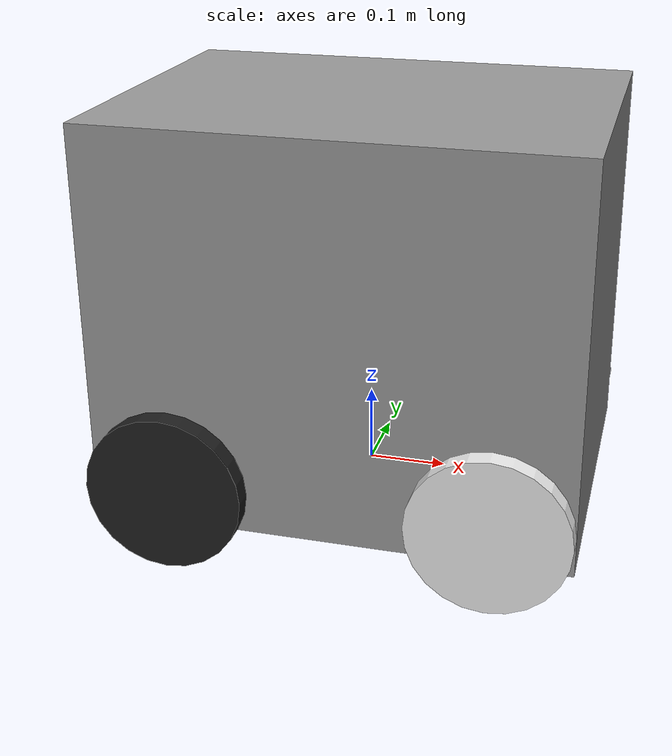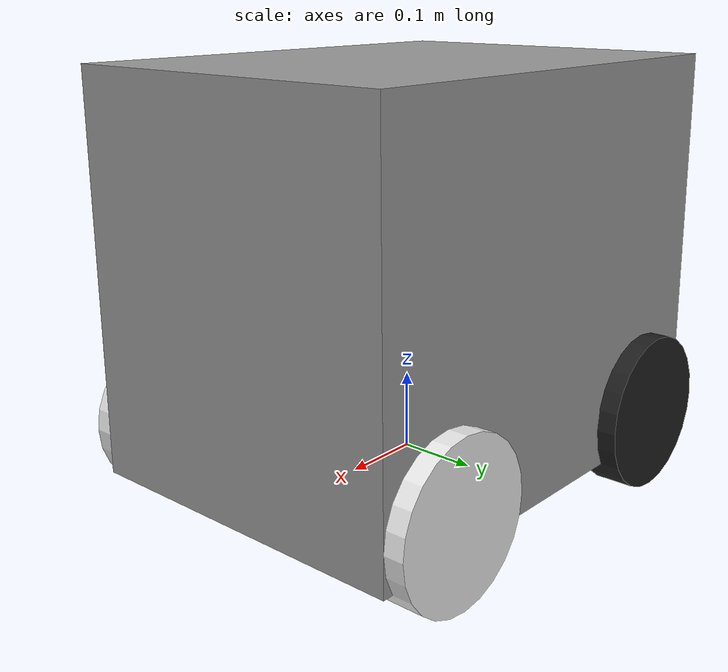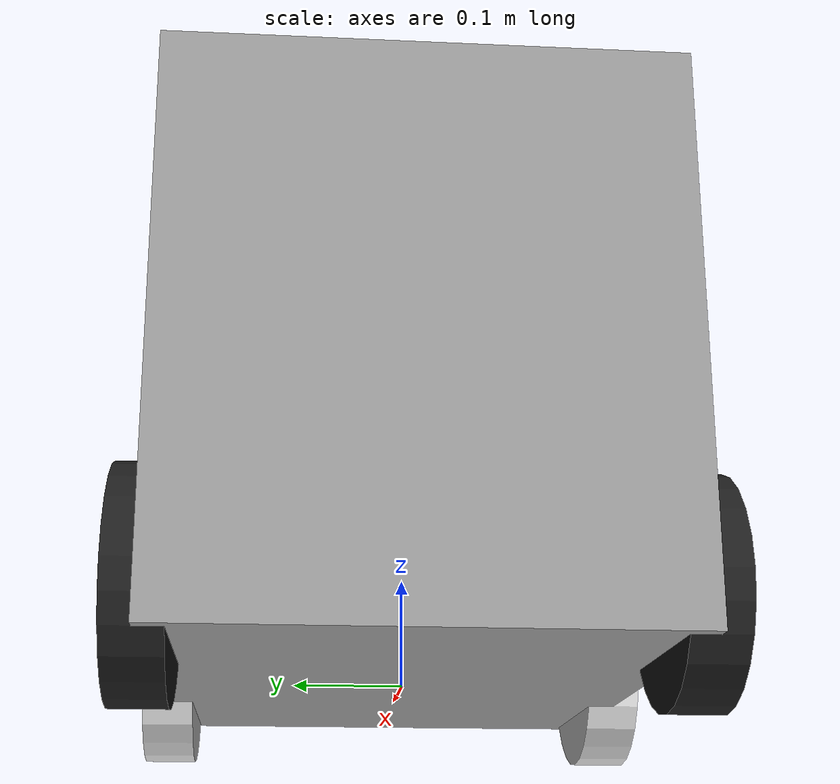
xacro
<?xml version="1.0"?>
<!-- Basic differential drive mobile base -->
<robot xmlns:xacro="http://www.ros.org/wiki/xacro" name="bob">
  <xacro:arg name="simulated" default="true" />

  <!-- Import xacro files -->
  <xacro:include filename="$(find bob_description)/gazebo/bob_materials.xacro" />
  <xacro:include filename="$(find bob_description)/urdf/bob_description.urdf.xacro" />
  <xacro:include filename="$(find bob_description)/sensors/intel_d435.xacro" />

  <!-- Call macro to summon bob -->
  <xacro:summon_bob/>

  <!-- If simulating in gazebo, load simulated hardware interfaces, senso and joint state broadcasters -->
  <xacro:if value="$(arg simulated)">
    <xacro:include filename="$(find bob_description)/ros2_control/bob_gazebo_ros2_control.xacro" />
    <xacro:include filename="$(find bob_description)/gazebo/bob_gazebo_imu.xacro" />

    <xacro:bob_gazebo_ros2_control name="bob_gazebo_control" />
    <xacro:bob_gazebo_imu />

    <gazebo>
      <plugin filename="libgazebo_ros2_control.so" name="gazebo_ros2_control">
        <parameters>$(find bob_description)/config/bob_gazebo_controller.yaml</parameters>
      </plugin>
    </gazebo>
  </xacro:if>

  <!-- Else use the actual hardware interfaces -->
  <xacro:unless value="$(arg simulated)">
    <xacro:include filename="$(find bob_description)/ros2_control/bob_odrive_ros2_control.xacro" />
    <xacro:bob_ros2_control
      name="bob_control" />
  </xacro:unless>

  <!-- Slap in the intel d435-->
  <!--  NOTE set to pose param from model.sdf -->

</robot>

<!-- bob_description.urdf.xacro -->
<robot xmlns:xacro="http://www.ros.org/wiki/xacro">

  <xacro:macro name="summon_bob">

    <!-- Constants for robot dimensions -->
    <xacro:property name="PI" value="3.1415926535897931"/>
    <xacro:property name="base_mass" value="30" /> <!-- arbitrary value for base mass -->
    <xacro:property name="base_width" value="0.45" />
    <xacro:property name="base_length" value="0.6" />
    <xacro:property name="base_height" value="0.5" />
    <xacro:property name="wheel_mass" value="0.5" /> <!-- arbitrary value for wheel mass -->
    <xacro:property name="wheel_len" value="0.05" />
    <xacro:property name="wheel_radius" value="0.1" />
    <xacro:property name="caster_wheel_mass" value="0.1" /> <!-- arbitrary value for caster wheel mass -->
    <xacro:property name="caster_wheel_radius" value="0.015" />
    <xacro:property name="z_offset" value="0.05" /> <!-- Space btw top of beam and the each joint -->
    <xacro:property name="x_offset" value="0.2" />

    <!-- Base Link -->
    <link name="base_link">
      <collision>
        <origin xyz="0 0 ${base_height/2}" rpy="0 0 0"/>
        <geometry>
          <box size="${base_length} ${base_width} ${base_height}"/>
        </geometry>
      </collision>

      <visual>
        <origin xyz="0 0 ${base_height/2}" rpy="0 0 0"/>
        <geometry>
          <box size="${base_length} ${base_width} ${base_height}"/>
        </geometry>
        <material name="grey"/>
      </visual>

      <inertial>
        <origin xyz="0 0 ${base_height/2}" rpy="0 0 0"/>
        <mass value="${base_mass}"/>
        <inertia
          ixx="${base_mass / 12.0 * (base_length*base_length + base_height*base_height)}" ixy="0.0" ixz="0.0"
          iyy="${base_mass / 12.0 * (base_height*base_height + base_width*base_width)}" iyz="0.0"
          izz="${base_mass / 12.0 * (base_width*base_width + base_length*base_length)}"/>
        </inertial>
    </link>

    <joint name="left_wheel_joint" type="continuous">
      <parent link="base_link"/>
      <child link="left_wheel"/>
      <origin xyz="-${x_offset} -${base_width/2} ${z_offset}" rpy="-${PI/2} 0 0"/>
      <axis xyz="0 0 1"/>
      <dynamics damping="0.2"/>
    </joint>

    <!-- left wheel Link -->
    <link name="left_wheel">
      <collision>
        <origin xyz="0 0 0" rpy="0 0 0"/>
        <geometry>
          <cylinder length="${wheel_len}" radius="${wheel_radius}"/>
        </geometry>
      </collision>

      <visual>
        <origin xyz="0 0 0" rpy="0 0 0"/>
        <geometry>
          <cylinder length="${wheel_len}" radius="${wheel_radius}"/>
        </geometry>
        <material name="black"/>
      </visual>

      <inertial>
        <origin xyz="0 0 0" rpy="0 0 0"/>
        <mass value="${wheel_mass}"/>
        <inertia
          ixx="${wheel_mass / 12.0 * (3*wheel_radius + wheel_len*wheel_len)}" ixy="0.0" ixz="0.0"
          iyy="${wheel_mass / 12.0 * wheel_radius*wheel_radius}" iyz="0.0"
          izz="${wheel_mass / 12.0 * wheel_radius*wheel_radius}"/>
      </inertial>
    </link>

    <joint name="right_wheel_joint" type="continuous">
      <parent link="base_link"/>
      <child link="right_wheel"/>
      <origin xyz="-${x_offset} ${base_width/2} ${z_offset}" rpy="-${PI/2} 0 0"/>
      <axis xyz="0 0 1"/>
      <dynamics damping="0.2"/>
    </joint>

      <!-- right wheel Link -->
    <link name="right_wheel">
      <collision>
        <origin xyz="0 0 0" rpy="0 0 0"/>
        <geometry>
          <cylinder length="${wheel_len}" radius="${wheel_radius}"/>
        </geometry>
      </collision>

      <visual>
        <origin xyz="0 0 0" rpy="0 0 0"/>
        <geometry>
          <cylinder length="${wheel_len}" radius="${wheel_radius}"/>
        </geometry>
        <material name="black"/>
      </visual>

      <inertial>
        <origin xyz="0 0 0" rpy="0 0 0"/>
        <mass value="${wheel_mass}"/>
        <inertia
          ixx="${wheel_mass / 12.0 * (3*wheel_radius + wheel_len*wheel_len)}" ixy="0.0" ixz="0.0"
          iyy="${wheel_mass / 12.0 * wheel_radius*wheel_radius}" iyz="0.0"
          izz="${wheel_mass / 12.0 * wheel_radius*wheel_radius}"/>
      </inertial>
    </link>

    <joint name="front_left_wheel_joint" type="fixed">
      <parent link="base_link"/>
      <child link="front_left_wheel"/>
      <origin xyz="${x_offset} -${base_width/2} ${z_offset}" rpy="-${PI/2} 0 0"/>
    </joint>

    <!-- front left wheel Link -->
    <link name="front_left_wheel">
      <collision>
        <geometry>
          <cylinder length="${wheel_len}" radius="${wheel_radius}"/>
        </geometry>
      </collision>

      <visual>
        <geometry>
          <cylinder length="${wheel_len}" radius="${wheel_radius}"/>
        </geometry>
        <material name="white"/>
      </visual>

      <inertial>
        <origin xyz="0 0 0" rpy="0 0 0"/>
        <mass value="${wheel_mass}"/>
        <inertia
          ixx="${wheel_mass / 12.0 * (3*wheel_radius + wheel_len*wheel_len)}" ixy="0.0" ixz="0.0"
          iyy="${wheel_mass / 12.0 * wheel_radius*wheel_radius}" iyz="0.0"
          izz="${wheel_mass / 12.0 * wheel_radius*wheel_radius}"/>
      </inertial>
    </link>

    <gazebo reference="front_left_wheel">
      <mu1 value="0.0"/>
      <mu2 value="0.0"/>
    </gazebo>

    <joint name="front_right_wheel_joint" type="fixed">
      <parent link="base_link"/>
      <child link="front_right_wheel"/>
      <origin xyz="${x_offset} ${base_width/2} ${z_offset}" rpy="-${PI/2} 0 0"/>
    </joint>

    <!-- front right wheel Link -->
    <link name="front_right_wheel">
      <collision>
        <geometry>
          <cylinder length="${wheel_len}" radius="${wheel_radius}"/>
        </geometry>
      </collision>

      <visual>
        <geometry>
          <cylinder length="${wheel_len}" radius="${wheel_radius}"/>
        </geometry>
        <material name="white"/>
      </visual>

      <inertial>
        <origin xyz="0 0 0" rpy="0 0 0"/>
        <mass value="${wheel_mass}"/>
        <inertia
          ixx="${wheel_mass / 12.0 * (3*wheel_radius + wheel_len*wheel_len)}" ixy="0.0" ixz="0.0"
          iyy="${wheel_mass / 12.0 * wheel_radius*wheel_radius}" iyz="0.0"
          izz="${wheel_mass / 12.0 * wheel_radius*wheel_radius}"/>
      </inertial>
    </link>

    <gazebo reference="front_right_wheel">
      <mu1 value="0.0"/>
      <mu2 value="0.0"/>
    </gazebo>

    <!-- IMU-->
    <link name="imu_link"/>

    <joint name="imu_joint" type="fixed">
      <parent link="base_link"/>
      <child link="imu_link"/>
      <origin xyz="0 0 0"/>
    </joint>

  </xacro:macro>

</robot>
